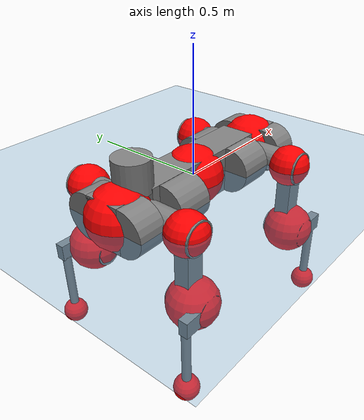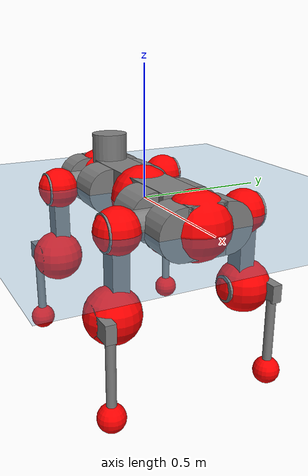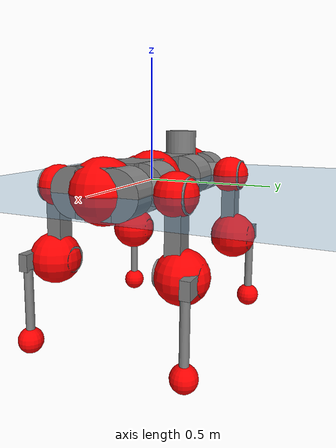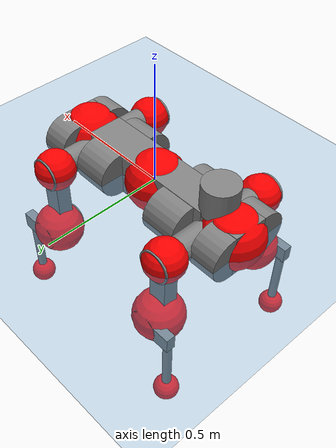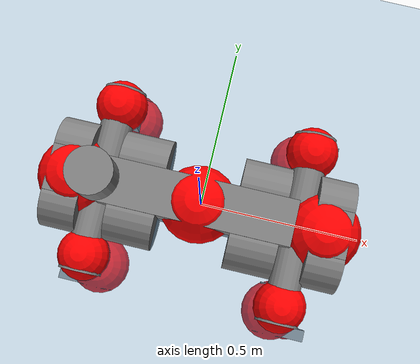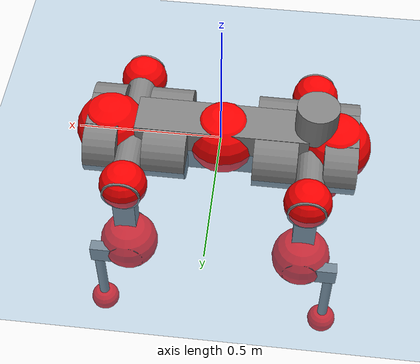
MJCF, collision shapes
<mujoco model="anymal_c">
  <compiler angle="radian" assetdir="assets" balanceinertia="true" inertiafromgeom="false"/>

  <option timestep="0.005" density="1.2" viscosity="2e-05"/>

  <size nkey="1"/>

  <visual>
    <quality shadowsize="8192"/>
    <map shadowclip="0.5"/>
  </visual>

  <default>
    <default class="/">
      <material specular="0" shininess="0.25"/>
      <geom contype="0" conaffinity="0" group="1" solref="-1000 -80"/>
      <site size="0.01 0.005 0.005" group="5"/>
      <general forcelimited="true" forcerange="-80 80" biastype="affine" gainprm="80" biasprm="0 -80 -2"/>
      <default class="anymal_c">
        <joint armature="0.01" damping="0.01" frictionloss="0.1"/>
        <default class="visual">
          <geom type="mesh" group="2"/>
          <default class="visual_zflip"/>
        </default>
        <default class="collision">
          <geom type="cylinder" group="3"/>
          <default class="foot">
            <geom size="0.03 0 0" type="sphere" condim="6" priority="1" friction="0.8 0.02 0.01" solimp="0.015 1 0.03"/>
          </default>
        </default>
      </default>
      <default class="reward_collision_sphere">
        <geom group="5" rgba="1 0 0 1"/>
      </default>
    </default>
  </default>

  <asset>
    <texture type="skybox" colorspace="auto" name="//unnamed_texture_0" builtin="gradient" rgb1="0.95 0.95 0.95" rgb2="0.95 0.95 0.95" width="100" height="600"/>
    <texture type="2d" colorspace="auto" name="texplane" builtin="checker" rgb1="0.345 0.575 0.748" rgb2="0.345 0.575 0.748" markrgb="1 1 1" width="512" height="512"/>
    <texture type="2d" colorspace="linear" name="base" file="base.png"/>
    <texture type="2d" colorspace="linear" name="top_shell" file="top_shell.png"/>
    <texture type="2d" colorspace="linear" name="bottom_shell" file="bottom_shell.png"/>
    <texture type="2d" colorspace="linear" name="remote" file="remote.png"/>
    <texture type="2d" colorspace="linear" name="hatch" file="hatch.png"/>
    <texture type="2d" colorspace="linear" name="handle" file="handle.png"/>
    <texture type="2d" colorspace="linear" name="face" file="face.png"/>
    <texture type="2d" colorspace="linear" name="battery" file="battery.png"/>
    <texture type="2d" colorspace="linear" name="lidar_cage" file="lidar_cage.png"/>
    <texture type="2d" colorspace="linear" name="depth_camera" file="depth_camera.png"/>
    <texture type="2d" colorspace="linear" name="wide_angle_camera" file="wide_angle_camera.png"/>
    <texture type="2d" colorspace="linear" name="lidar" file="lidar.png"/>
    <texture type="2d" colorspace="linear" name="drive" file="drive.png"/>
    <texture type="2d" colorspace="linear" name="hip_l" file="hip_l.png"/>
    <texture type="2d" colorspace="linear" name="shank_l" file="shank_l.png"/>
    <texture type="2d" colorspace="linear" name="foot" file="foot.png"/>
    <texture type="2d" colorspace="linear" name="thigh" file="thigh.png"/>
    <texture type="2d" colorspace="linear" name="shank_r" file="shank_r.png"/>
    <texture type="2d" colorspace="linear" name="hip_r" file="hip_r.png"/>
    <material name="MatPlane" class="/" texture="texplane" texuniform="true" texrepeat="2 2" specular="0.9" shininess="0.5"/>
    <material name="black_plastic" class="/" rgba="0.007 0.007 0.007 1"/>
    <material name="green" class="/" rgba="0.052 0.178 0.033 1"/>
    <material name="red" class="/" rgba="0.178 0.006 0.005 1"/>
    <material name="yellow" class="/" rgba="0.178 0.119 0.006 1"/>
    <material name="lwl" class="/" rgba="0.8 0.8 0.8 1"/>
    <material name="base" class="/" texture="base"/>
    <material name="top_shell" class="/" texture="top_shell"/>
    <material name="bottom_shell" class="/" texture="bottom_shell"/>
    <material name="hip_l" class="/" texture="hip_l"/>
    <material name="thigh" class="/" texture="thigh"/>
    <material name="shank_l" class="/" texture="shank_l"/>
    <material name="foot" class="/" texture="foot"/>
    <material name="hip_r" class="/" texture="hip_r"/>
    <material name="shank" class="/" texture="shank_r"/>
    <material name="hatch" class="/" texture="hatch"/>
    <material name="remote" class="/" texture="remote"/>
    <material name="handle" class="/" texture="handle"/>
    <material name="face" class="/" texture="face"/>
    <material name="depth_camera" class="/" texture="depth_camera"/>
    <material name="wide_angle_camera" class="/" texture="wide_angle_camera"/>
    <material name="battery" class="/" texture="battery"/>
    <material name="lidar_cage" class="/" texture="lidar_cage"/>
    <material name="lidar" class="/" texture="lidar"/>
    <material name="drive" class="/" texture="drive"/>
    <mesh name="base_0" class="/" file="base_0.obj"/>
    <mesh name="base_1" class="/" file="base_1.obj"/>
    <mesh name="base_2" class="/" file="base_2.obj"/>
    <mesh name="base_3" class="/" file="base_3.obj"/>
    <mesh name="base_4" class="/" file="base_4.obj"/>
    <mesh name="base_5" class="/" file="base_5.obj"/>
    <mesh name="top_shell" class="/" file="top_shell.obj"/>
    <mesh name="bottom_shell" class="/" file="bottom_shell.obj"/>
    <mesh name="remote" class="/" file="remote.obj"/>
    <mesh name="handle" class="/" file="handle.obj"/>
    <mesh name="face" class="/" file="face.obj"/>
    <mesh name="wide_angle_camera" class="/" file="wide_angle_camera.obj"/>
    <mesh name="depth_camera" class="/" file="depth_camera.obj"/>
    <mesh name="battery" class="/" file="battery.obj"/>
    <mesh name="lidar_cage" class="/" file="lidar_cage.obj"/>
    <mesh name="lidar" class="/" file="lidar.obj"/>
    <mesh name="drive" class="/" file="drive.obj"/>
    <mesh name="hip_l" class="/" file="hip_l.obj"/>
    <mesh name="thigh" class="/" file="thigh.obj"/>
    <mesh name="shank_l" class="/" file="shank_l.obj"/>
    <mesh name="foot" class="/" file="foot.obj"/>
    <mesh name="hip_r" class="/" file="hip_r.obj"/>
    <mesh name="hatch" class="/" file="hatch.obj"/>
    <mesh name="shank_r" class="/" file="shank_r.obj"/>
  </asset>

  <worldbody>
    <geom name="floor" class="/" size="100 100 0.125" type="plane" group="0" material="MatPlane"/>
    <light name="toplight_shadow" class="/" pos="0 0 5" dir="0.0990148 0.0990148 -0.990148" type="directional" ambient="0.04 0.04 0.04" diffuse="0.55 0.55 0.55" specular="0.12 0.12 0.12"/>
    <light name="toplight_fill" class="/" pos="0 0 5" dir="0.0990148 0.0990148 -0.990148" type="directional" castshadow="false" ambient="0.04 0.04 0.04" diffuse="0.3 0.3 0.3" specular="0.08 0.08 0.08"/>
    <body name="trunk" childclass="anymal_c" pos="-0.00788365 -0.00200938 0.000769807" quat="0.999995 0.000237876 -0.0029974 -0.00121182">
      <inertial pos="0.00935809 -0.000655652 0.0484044" quat="0.49762 0.496915 0.496323 0.509031" mass="23.3576" diaginertia="0.325857 1.54756 0.250366"/>
      <joint name="//unnamed_joint_0" type="free" armature="0" damping="0" frictionloss="0"/>
      <geom name="//unnamed_geom_1" class="visual" material="green" mesh="base_0"/>
      <geom name="//unnamed_geom_2" class="visual" material="yellow" mesh="base_1"/>
      <geom name="//unnamed_geom_3" class="visual" material="red" mesh="base_2"/>
      <geom name="//unnamed_geom_4" class="visual" material="black_plastic" mesh="base_3"/>
      <geom name="//unnamed_geom_5" class="visual" material="lwl" mesh="base_4"/>
      <geom name="//unnamed_geom_6" class="visual" material="base" mesh="base_5"/>
      <geom name="trunk_1" class="collision" size="0.299989 0.0724112 0.0931001" type="box"/>
      <geom name="trunk_2" class="collision" size="0.0931001 0.0749973" pos="0.190328 0.0840018 0" quat="0.707107 0 0.707107 0"/>
      <geom name="trunk_3" class="collision" size="0.0931001 0.0749973" pos="-0.190328 0.0840018 0" quat="0.707107 0 0.707107 0"/>
      <geom name="trunk_4" class="collision" size="0.0931001 0.0749973" pos="0.190328 -0.0840018 0" quat="0.707107 0 0.707107 0"/>
      <geom name="trunk_5" class="collision" size="0.0931001 0.0749973" pos="-0.190328 -0.0840018 0" quat="0.707107 0 0.707107 0"/>
      <geom name="//unnamed_geom_12" class="visual" material="top_shell" mesh="top_shell"/>
      <geom name="//unnamed_geom_13" class="visual" material="bottom_shell" mesh="bottom_shell"/>
      <geom name="//unnamed_geom_14" class="visual" material="remote" mesh="remote"/>
      <geom name="//unnamed_geom_15" class="visual" material="handle" mesh="handle"/>
      <geom name="//unnamed_geom_16" class="visual" pos="0.362717 0 0" quat="1 0 0 0" material="face" mesh="face"/>
      <geom name="trunk_6" class="collision" size="0.0568945 0.0724112 0.0931001" pos="0.410846 0 0" type="box"/>
      <geom name="//unnamed_geom_18" class="collision" size="0.0931001 0.0568945" pos="0.410846 0.0840018 0" quat="0.707107 0 0.707107 0"/>
      <geom name="//unnamed_geom_19" class="collision" size="0.0931001 0.0568945" pos="0.410846 -0.0840018 0" quat="0.707107 0 0.707107 0"/>
      <geom name="//unnamed_geom_20" class="visual" pos="0.403983 0 -0.0311887" quat="0.965926 0 0.258819 0" material="depth_camera" mesh="depth_camera"/>
      <geom name="//unnamed_geom_21" class="visual" pos="0.448911 0 0.0153928" material="wide_angle_camera" mesh="wide_angle_camera"/>
      <geom name="//unnamed_geom_22" class="visual_zflip" pos="-0.362717 0 0" quat="0 0 0 1" material="face" mesh="face"/>
      <geom name="trunk_7" class="collision" size="0.0568945 0.0724112 0.0931001" pos="-0.410846 0 0" quat="0 0 0 1" type="box"/>
      <geom name="//unnamed_geom_24" class="collision" size="0.0931001 0.0568945" pos="-0.410846 -0.0840018 0" quat="0 -0.707107 0 0.707107"/>
      <geom name="//unnamed_geom_25" class="collision" size="0.0931001 0.0568945" pos="-0.410846 0.0840018 0" quat="0 -0.707107 0 0.707107"/>
      <geom name="//unnamed_geom_26" class="visual" pos="-0.403983 0 -0.0311887" quat="0 -0.258819 0 0.965926" material="depth_camera" mesh="depth_camera"/>
      <geom name="//unnamed_geom_27" class="visual_zflip" pos="-0.448911 0 0.0153928" quat="0 0 0 1" material="wide_angle_camera" mesh="wide_angle_camera"/>
      <geom name="//unnamed_geom_28" class="visual" material="battery" mesh="battery"/>
      <geom name="//unnamed_geom_29" class="visual" pos="0 0.0960244 0.0287063" quat="0.683013 -0.183013 0.183013 0.683013" material="depth_camera" mesh="depth_camera"/>
      <geom name="//unnamed_geom_30" class="visual" pos="0 -0.0960244 0.0287063" quat="0.683013 0.183013 0.183013 -0.683013" material="depth_camera" mesh="depth_camera"/>
      <geom name="//unnamed_geom_31" class="visual" pos="-0.318526 0 0.0755757" quat="1 0 0 0" material="lidar_cage" mesh="lidar_cage"/>
      <geom name="trunk_8" class="collision" size="0.0724112 0.0620667" pos="-0.318526 0 0.13727"/>
      <geom name="//unnamed_geom_33" class="visual" pos="-0.318526 0.000127666 0.146216" quat="0.707107 0 0 -0.707107" material="lidar" mesh="lidar"/>
      <geom name="//unnamed_geom_34" class="visual" pos="0.262434 0.124742 2.96331e-09" quat="0.258819 0.965926 0 0" material="drive" mesh="drive"/>
      <geom name="//unnamed_geom_35" class="visual" pos="0.262434 -0.124742 -2.96331e-09" quat="0.258819 -0.965926 0 0" material="drive" mesh="drive"/>
      <geom name="//unnamed_geom_36" class="visual" pos="-0.262434 0.124742 -2.96331e-09" quat="0 0 0.965926 -0.258819" material="drive" mesh="drive"/>
      <geom name="//unnamed_geom_37" class="visual" pos="-0.262434 -0.124742 2.96331e-09" quat="0 0 -0.965926 -0.258819" material="drive" mesh="drive"/>
      <geom name="//unnamed_geom_38" class="visual" pos="0.101508 0 0.0750616" quat="1 0 0 0" material="hatch" mesh="hatch"/>
      <geom name="//unnamed_geom_39" class="reward_collision_sphere" size="0.124133"/>
      <geom name="//unnamed_geom_40" class="reward_collision_sphere" size="0.124133" pos="0.393782 0 0"/>
      <geom name="//unnamed_geom_41" class="reward_collision_sphere" size="0.124133" pos="-0.393782 0 0"/>
      <site name="imu" pos="0.207126 0.00222063 0.0172989" size="0.0103445"/>
      <camera name="track" pos="0 -2.40005 0" quat="0.707107 0.707107 0 0" mode="trackcom"/>
      <camera name="ego_camera" pos="0.393782 0 -0.0411296" quat="-0.5 -0.5 0.5 0.5"/>
      <body name="LF_HIP" pos="0.262865 0.123977 -0.000389295" quat="0.258862 0.965914 0.00021642 -0.00020732">
        <inertial pos="0.0515504 -0.0146473 -0.0107385" quat="-0.121779 0.709303 -0.12671 0.682644" mass="3.17796" diaginertia="0.00276708 0.0123203 0.00377351"/>
        <joint name="LF_HAA" pos="0 0 0" axis="0.999277 0.0320234 -0.020497" range="-0.867824 0.44121" armature="0.010629" damping="0.00410313" frictionloss="0.0997438"/>
        <geom name="//unnamed_geom_42" class="visual" pos="0 0.000174318 -2.86316e-05" quat="0.258819 -0.965926 0 0" material="hip_l" mesh="hip_l"/>
        <geom name="//unnamed_geom_43" class="visual" pos="0.0524167 -0.0677315 -0.0378342" quat="0.183013 -0.683013 0.683013 0.183013" material="drive" mesh="drive"/>
        <geom name="//unnamed_geom_44" class="collision" size="0.0517223 0.0724112" pos="0.0524167 -0.0143521 -0.0071" quat="-0.353553 -0.612372 0.612372 -0.353553"/>
        <body name="LF_THIGH" pos="0.0514565 -0.0871555 -0.0447294" quat="0.182066 -0.683524 0.683378 0.180672">
          <inertial pos="0.0235562 0.00266462 -0.246334" quat="0.993237 -0.00578456 -0.0811282 0.0828584" mass="3.46579" diaginertia="0.0160258 0.0797459 0.00450686"/>
          <joint name="LF_HFE" pos="0 0 0" axis="0.999995 0.00048944 0.00319911" stiffness="0.0400084" range="-3.153 3.15549" armature="0.0104696" damping="0.00989622" frictionloss="0.100487"/>
          <geom name="//unnamed_geom_45" class="visual" pos="-0.00646532 -1.01878e-05 0" quat="0.707107 0 0 -0.707107" material="thigh" mesh="thigh"/>
          <geom name="//unnamed_geom_46" class="collision" size="0.067239 0.0413778" pos="0.0350028 0 0" quat="0.5 0.5 -0.5 -0.5"/>
          <geom name="//unnamed_geom_47" class="collision" size="0.0387917 0.0310334 0.146182" pos="0.0262521 0 -0.145305" quat="0.707107 0 0 -0.707107" type="box"/>
          <geom name="//unnamed_geom_48" class="visual" pos="0.0877696 0 -0.293049" quat="1 0 0 0" material="drive" mesh="drive"/>
          <geom name="//unnamed_geom_49" class="collision" size="0.0517223 0.0724112" pos="0.0265146 0 -0.293049" quat="0.707107 0 0.707107 0"/>
          <geom name="//unnamed_geom_50" class="reward_collision_sphere" size="0.0827556" pos="0.0218768 0 0"/>
          <body name="LF_SHANK" pos="0.0906839 0.00637351 -0.295909" quat="0.999999 0.00115464 -0.000278674 -0.000106758">
            <inertial pos="0.00954353 -0.0732622 -0.0858707" quat="0.992992 -0.115361 -0.00133608 -0.0256433" mass="0.64281" diaginertia="0.00479843 0.0199527 0.00116969"/>
            <joint name="LF_KFE" pos="0 0 0" axis="0.999993 0.00204073 0.00302855" range="-3.01369 3.176" armature="0.00979248" damping="0.0302982" frictionloss="0.0965667"/>
            <geom name="//unnamed_geom_51" class="visual" pos="-0.0021082 -0.011241 0" quat="0.707107 0 0 -0.707107" material="shank_l" mesh="shank_l"/>
            <geom name="LF_kfe_act" class="collision" size="0.0620667 0.0206889" pos="0.0175014 0 0" quat="0.5 0.5 -0.5 -0.5"/>
            <geom name="//unnamed_geom_53" class="collision" size="0.0594796 0.0349125 0.0196545" pos="0.0175014 -0.0690003 0" quat="0.5 0.5 -0.5 -0.5" type="box"/>
            <geom name="//unnamed_geom_54" class="visual" pos="0.0114202 -0.109165 -0.347514" quat="0.382683 0 0 -0.92388" material="foot" mesh="foot"/>
            <geom name="LF_calf" class="collision" size="0.0181028 0.146118" pos="0.0114197 -0.105542 -0.173757" quat="0.707107 0 0 -0.707107"/>
            <geom name="LF_foot" class="foot" size="0.0201169" pos="0.0114197 -0.105542 -0.324379" quat="0.707107 0 0 -0.707107"/>
            <geom name="//unnamed_geom_57" class="reward_collision_sphere" size="0.103445" pos="-0.0437535 0 0"/>
            <geom name="//unnamed_geom_58" class="reward_collision_sphere" size="0.0517223" pos="0.0114197 -0.105542 -0.324379"/>
            <site name="LF_foot" class="foot" pos="0.0114197 -0.105542 -0.324379" quat="0.707107 0 0 -0.707107" size="0.0103445"/>
          </body>
        </body>
      </body>
      <body name="RF_HIP" pos="0.265325 -0.124851 0.00651837" quat="0.256887 -0.966441 0.000387292 0.000447161">
        <inertial pos="0.0484287 0.0240685 -0.00790706" quat="0.142039 0.677082 0.151405 0.706018" mass="3.12576" diaginertia="0.00322081 0.0125381 0.00399312"/>
        <joint name="RF_HAA" pos="0 0 0" axis="0.999972 0.00132171 -0.00732663" range="-0.477914 0.711844" armature="0.0109016" damping="0.0225181" frictionloss="0.130124"/>
        <geom name="//unnamed_geom_59" class="visual" pos="0 -0.000174317 -2.86315e-05" quat="0.258819 0.965926 0 0" material="hip_r" mesh="hip_r"/>
        <geom name="//unnamed_geom_60" class="visual" pos="0.0524167 0.0677315 -0.0378342" quat="0.183013 0.683013 0.683013 -0.183013" material="drive" mesh="drive"/>
        <geom name="//unnamed_geom_61" class="collision" size="0.0517223 0.0724112" pos="0.0524167 0.0143521 -0.0071" quat="-0.353553 0.612372 0.612372 0.353553"/>
        <body name="RF_THIGH" pos="0.0522502 0.0949249 -0.043043" quat="0.183619 0.683396 0.682376 -0.183352">
          <inertial pos="0.0253194 0.0040639 -0.254625" quat="0.992013 -0.0168818 -0.0875443 0.0892241" mass="3.33494" diaginertia="0.0152727 0.0744624 0.0045642"/>
          <joint name="RF_HFE" pos="0 0 0" axis="0.999987 0.00368825 0.00360788" stiffness="0.0105178" range="-3.19035 3.04869" armature="0.0105481" damping="0.00335728" frictionloss="0.101215"/>
          <geom name="//unnamed_geom_62" class="visual" pos="-0.00646532 -1.01878e-05 0" quat="0.707107 0 0 -0.707107" material="thigh" mesh="thigh"/>
          <geom name="//unnamed_geom_63" class="collision" size="0.067239 0.0413778" pos="0.0350028 0 0" quat="0.5 0.5 0.5 0.5"/>
          <geom name="//unnamed_geom_64" class="collision" size="0.0387917 0.0310334 0.146182" pos="0.0262521 0 -0.145305" quat="0.707107 0 0 0.707107" type="box"/>
          <geom name="//unnamed_geom_65" class="visual" pos="0.0877696 0 -0.293049" quat="1 0 0 0" material="drive" mesh="drive"/>
          <geom name="//unnamed_geom_66" class="collision" size="0.0517223 0.0724112" pos="0.0265146 0 -0.293049" quat="0.707107 0 0.707107 0"/>
          <geom name="//unnamed_geom_67" class="reward_collision_sphere" size="0.0827556" pos="0.0218768 0 0"/>
          <body name="RF_SHANK" pos="0.088394 0.00454927 -0.294115" quat="1 1.05959e-05 0.000117872 2.58561e-05">
            <inertial pos="0.00525044 0.0754338 -0.082077" quat="0.98934 0.143245 0.00906936 0.0245767" mass="0.636805" diaginertia="0.00524427 0.0230012 0.00134093"/>
            <joint name="RF_KFE" pos="0 0 0" axis="0.999403 -0.00601584 -0.0340155" stiffness="0.0253641" range="-3.07936 3.07271" armature="0.00991429" damping="0" frictionloss="0.103406"/>
            <geom name="//unnamed_geom_68" class="visual" pos="-0.00210819 0.011241 0" quat="0.707107 0 0 0.707107" material="shank" mesh="shank_r"/>
            <geom name="RF_kfe_act" class="collision" size="0.0620667 0.0206889" pos="0.0175014 0 0" quat="0.5 0.5 0.5 0.5"/>
            <geom name="//unnamed_geom_70" class="collision" size="0.0594796 0.0349125 0.0196545" pos="0.0175014 0.0690003 0" quat="0.5 0.5 0.5 0.5" type="box"/>
            <geom name="//unnamed_geom_71" class="visual" pos="0.0114192 0.109165 -0.347514" quat="0.382683 0 0 0.92388" material="foot" mesh="foot"/>
            <geom name="RF_calf" class="collision" size="0.0181028 0.146118" pos="0.0114197 0.105542 -0.173757" quat="0.707107 0 0 0.707107"/>
            <geom name="RF_foot" class="foot" size="0.0289534" pos="0.0114197 0.105542 -0.324379" quat="0.707107 0 0 0.707107"/>
            <geom name="//unnamed_geom_74" class="reward_collision_sphere" size="0.103445" pos="-0.0437535 0 0"/>
            <geom name="//unnamed_geom_75" class="reward_collision_sphere" size="0.0517223" pos="0.0114197 0.105542 -0.324379"/>
            <site name="RF_foot" class="foot" pos="0.0114197 0.105542 -0.324379" quat="0.707107 0 0 0.707107" size="0.0103445"/>
          </body>
        </body>
      </body>
      <body name="LH_HIP" pos="-0.261518 0.125119 0.00369542" quat="-8.17938e-05 0.000167767 0.965845 -0.259121">
        <inertial pos="0.0499607 0.011353 -0.00481053" quat="0.130118 0.661413 0.163356 0.720359" mass="2.88481" diaginertia="0.0031599 0.0123559 0.00357274"/>
        <joint name="LH_HAA" pos="0 0 0" axis="1 -0.000534076 -3.53886e-05" range="-0.53972 0.762168" armature="0.0125861" damping="0.0019641" frictionloss="0.0732501"/>
        <geom name="//unnamed_geom_76" class="visual" pos="0 -0.000174317 -2.86315e-05" quat="-0.258819 -0.965926 0 0" material="hip_r" mesh="hip_r"/>
        <geom name="//unnamed_geom_77" class="visual" pos="0.0524167 0.0677315 -0.0378342" quat="0.183013 0.683013 0.683013 -0.183013" material="drive" mesh="drive"/>
        <geom name="//unnamed_geom_78" class="collision" size="0.0517223 0.0724112" pos="0.0524167 0.0143521 -0.0071" quat="-0.353553 0.612372 0.612372 0.353553"/>
        <body name="LH_THIGH" pos="0.0516149 0.0926736 -0.0488218" quat="0.182652 0.682378 0.683439 -0.184144">
          <inertial pos="0.0267155 0.000589005 -0.25039" quat="0.992518 -0.00560991 -0.0811264 0.0910766" mass="3.15141" diaginertia="0.0161009 0.0776778 0.00472162"/>
          <joint name="LH_HFE" pos="0 0 0" axis="0.999936 -0.00445464 -0.0104469" range="-3.10711 3.18044" armature="0.00843706" damping="0.0142922" frictionloss="0.104419"/>
          <geom name="//unnamed_geom_79" class="visual" pos="-0.00646532 -1.01878e-05 0" quat="0.707107 0 0 -0.707107" material="thigh" mesh="thigh"/>
          <geom name="//unnamed_geom_80" class="collision" size="0.067239 0.0413778" pos="0.0350028 0 0" quat="0.5 0.5 -0.5 -0.5"/>
          <geom name="//unnamed_geom_81" class="collision" size="0.0387917 0.0310334 0.146182" pos="0.0262521 0 -0.145305" quat="0.707107 0 0 -0.707107" type="box"/>
          <geom name="//unnamed_geom_82" class="visual" pos="0.0877696 0 -0.293049" quat="1 0 0 0" material="drive" mesh="drive"/>
          <geom name="//unnamed_geom_83" class="collision" size="0.0517223 0.0724112" pos="0.0265146 0 -0.293049" quat="0.707107 0 0.707107 0"/>
          <geom name="//unnamed_geom_84" class="reward_collision_sphere" size="0.0827556" pos="0.0218768 0 0"/>
          <body name="LH_SHANK" pos="0.0880442 -0.000784938 -0.286639" quat="1 0.000324672 -0.000610756 0.000327124">
            <inertial pos="0.00421676 0.0660285 -0.0810222" quat="0.992595 0.117489 -0.00553454 0.030331" mass="0.656461" diaginertia="0.00536563 0.023731 0.00142173"/>
            <joint name="LH_KFE" pos="0 0 0" axis="0.999954 0.00962141 9.70824e-05" stiffness="0.0385746" range="-3.13021 3.12989" armature="0.00953117" damping="0.0199329" frictionloss="0.0663082"/>
            <geom name="//unnamed_geom_85" class="visual" pos="-0.00210819 0.011241 0" quat="-0.707107 0 0 -0.707107" material="shank" mesh="shank_r"/>
            <geom name="LH_kfe_act" class="collision" size="0.0620667 0.0206889" pos="0.0175014 0 0" quat="0.5 0.5 -0.5 -0.5"/>
            <geom name="//unnamed_geom_87" class="collision" size="0.0594796 0.0349125 0.0196545" pos="0.0175014 0.0690003 0" quat="0.5 0.5 -0.5 -0.5" type="box"/>
            <geom name="//unnamed_geom_88" class="visual" pos="0.0114192 0.109165 -0.347514" quat="-0.382683 0 0 -0.92388" material="foot" mesh="foot"/>
            <geom name="LH_calf" class="collision" size="0.0181028 0.146118" pos="0.0114197 0.105542 -0.173757" quat="0.707107 0 0 -0.707107"/>
            <geom name="LH_foot" class="foot" size="0.0329502" pos="0.0114197 0.105542 -0.324379" quat="0.707107 0 0 -0.707107"/>
            <geom name="//unnamed_geom_91" class="reward_collision_sphere" size="0.103445" pos="-0.0437535 0 0"/>
            <geom name="//unnamed_geom_92" class="reward_collision_sphere" size="0.0517223" pos="0.0114197 0.105542 -0.324379"/>
            <site name="LH_foot" class="foot" pos="0.0114197 0.105542 -0.324379" quat="0.707107 0 0 -0.707107" size="0.0103445"/>
          </body>
        </body>
      </body>
      <body name="RH_HIP" pos="-0.261848 -0.123199 0.00172162" quat="-0.00221074 -0.00060646 -0.965246 -0.261332">
        <inertial pos="0.0423172 -0.0221336 -0.00139099" quat="-0.123168 0.716022 -0.146937 0.671231" mass="3.04427" diaginertia="0.00295046 0.0119261 0.00364888"/>
        <joint name="RH_HAA" pos="0 0 0" axis="0.999277 0.0302488 0.0230171" range="-0.711103 0.538432" armature="0.0107831" damping="0.0046929" frictionloss="0.114021"/>
        <geom name="//unnamed_geom_93" class="visual" pos="0 0.000174318 -2.86316e-05" quat="-0.258819 0.965926 0 0" material="hip_l" mesh="hip_l"/>
        <geom name="//unnamed_geom_94" class="visual" pos="0.0524167 -0.0677315 -0.0378342" quat="-0.183013 0.683013 -0.683013 -0.183013" material="drive" mesh="drive"/>
        <geom name="//unnamed_geom_95" class="collision" size="0.0517223 0.0724112" pos="0.0524167 -0.0143521 -0.0071" quat="0.353553 0.612372 -0.612372 0.353553"/>
        <body name="RH_THIGH" pos="0.0509436 -0.0839918 -0.0359165" quat="-0.183061 0.683041 -0.682974 -0.183003">
          <inertial pos="0.0250198 -0.000459252 -0.25275" quat="0.99304 -0.00510738 -0.0824175 0.0839832" mass="3.62957" diaginertia="0.0151299 0.0719794 0.00478574"/>
          <joint name="RH_HFE" pos="0 0 0" axis="0.999953 0.00957705 0.00141406" range="-3.1518 3.03447" armature="0.00915346" damping="0.0105155" frictionloss="0.113901"/>
          <geom name="//unnamed_geom_96" class="visual" pos="-0.00646532 -1.01878e-05 0" quat="0.707107 0 0 -0.707107" material="thigh" mesh="thigh"/>
          <geom name="//unnamed_geom_97" class="collision" size="0.067239 0.0413778" pos="0.0350028 0 0" quat="0.5 0.5 0.5 0.5"/>
          <geom name="//unnamed_geom_98" class="collision" size="0.0387917 0.0310334 0.146182" pos="0.0262521 0 -0.145305" quat="0.707107 0 0 0.707107" type="box"/>
          <geom name="//unnamed_geom_99" class="visual" pos="0.0877696 0 -0.293049" quat="1 0 0 0" material="drive" mesh="drive"/>
          <geom name="//unnamed_geom_100" class="collision" size="0.0517223 0.0724112" pos="0.0265146 0 -0.293049" quat="0.707107 0 0.707107 0"/>
          <geom name="//unnamed_geom_101" class="reward_collision_sphere" size="0.0827556" pos="0.0218768 0 0"/>
          <body name="RH_SHANK" pos="0.0872824 0.00366116 -0.29342" quat="1 -0.000215411 -0.000358936 -0.000157701">
            <inertial pos="0.00839853 -0.0709268 -0.0842146" quat="0.993253 -0.112813 -0.00804358 -0.0256261" mass="0.640267" diaginertia="0.00527836 0.023508 0.00122073"/>
            <joint name="RH_KFE" pos="0 0 0" axis="0.99957 0.0280738 0.00844928" range="-3.14107 3.12968" armature="0.00972131" damping="0" frictionloss="0.0961758"/>
            <geom name="//unnamed_geom_102" class="visual" pos="-0.0021082 -0.011241 0" quat="0.707107 0 0 -0.707107" material="shank_l" mesh="shank_l"/>
            <geom name="RH_kfe_act" class="collision" size="0.0620667 0.0206889" pos="0.0175014 0 0" quat="0.5 0.5 0.5 0.5"/>
            <geom name="//unnamed_geom_104" class="collision" size="0.0594796 0.0349125 0.0196545" pos="0.0175014 -0.0690003 0" quat="0.5 0.5 0.5 0.5" type="box"/>
            <geom name="//unnamed_geom_105" class="visual" pos="0.0114202 -0.109165 -0.347514" quat="0.382683 0 0 -0.92388" material="foot" mesh="foot"/>
            <geom name="RH_calf" class="collision" size="0.0181028 0.146118" pos="0.0114197 -0.105542 -0.173757" quat="0.707107 0 0 0.707107"/>
            <geom name="RH_foot" class="foot" size="0.0372832" pos="0.0114197 -0.105542 -0.324379" quat="0.707107 0 0 0.707107"/>
            <geom name="//unnamed_geom_108" class="reward_collision_sphere" size="0.103445" pos="-0.0437535 0 0"/>
            <geom name="//unnamed_geom_109" class="reward_collision_sphere" size="0.0517223" pos="0.0114197 -0.105542 -0.324379"/>
            <site name="RH_foot" class="foot" pos="0.0114197 -0.105542 -0.324379" quat="0.707107 0 0 0.707107" size="0.0103445"/>
          </body>
        </body>
      </body>
    </body>
  </worldbody>

  <contact>
    <pair class="/" geom1="floor" geom2="LF_foot" name="//unnamed_contact_0"/>
    <pair class="/" geom1="floor" geom2="RF_foot" name="//unnamed_contact_1"/>
    <pair class="/" geom1="floor" geom2="LH_foot" name="//unnamed_contact_2"/>
    <pair class="/" geom1="floor" geom2="RH_foot" name="//unnamed_contact_3"/>
  </contact>

  <actuator>
    <general name="LF_HAA" class="/" joint="LF_HAA" forcerange="-82.2832 82.2832" gainprm="79.5113" biasprm="0 -79.5113 -2.30886"/>
    <general name="LF_HFE" class="/" joint="LF_HFE" forcerange="-87.1091 87.1091" gainprm="79.5113" biasprm="0 -79.5113 -2.30886"/>
    <general name="LF_KFE" class="/" joint="LF_KFE" forcerange="-77.0428 77.0428" gainprm="79.5113" biasprm="0 -79.5113 -2.30886"/>
    <general name="RF_HAA" class="/" joint="RF_HAA" forcerange="-81.6277 81.6277" gainprm="79.5113" biasprm="0 -79.5113 -2.30886"/>
    <general name="RF_HFE" class="/" joint="RF_HFE" forcerange="-79.2664 79.2664" gainprm="79.5113" biasprm="0 -79.5113 -2.30886"/>
    <general name="RF_KFE" class="/" joint="RF_KFE" forcerange="-84.5178 84.5178" gainprm="79.5113" biasprm="0 -79.5113 -2.30886"/>
    <general name="LH_HAA" class="/" joint="LH_HAA" forcerange="-61.3611 61.3611" gainprm="79.5113" biasprm="0 -79.5113 -2.30886"/>
    <general name="LH_HFE" class="/" joint="LH_HFE" forcerange="-86.2789 86.2789" gainprm="79.5113" biasprm="0 -79.5113 -2.30886"/>
    <general name="LH_KFE" class="/" joint="LH_KFE" forcerange="-104.164 104.164" gainprm="79.5113" biasprm="0 -79.5113 -2.30886"/>
    <general name="RH_HAA" class="/" joint="RH_HAA" forcerange="-91.9688 91.9688" gainprm="79.5113" biasprm="0 -79.5113 -2.30886"/>
    <general name="RH_HFE" class="/" joint="RH_HFE" forcerange="-62.7371 62.7371" gainprm="79.5113" biasprm="0 -79.5113 -2.30886"/>
    <general name="RH_KFE" class="/" joint="RH_KFE" forcerange="-90.0986 90.0986" gainprm="79.5113" biasprm="0 -79.5113 -2.30886"/>
  </actuator>

  <sensor>
    <gyro site="imu" name="imu_angular_velocity"/>
    <velocimeter site="imu" name="imu_linear_velocity"/>
    <framelinvel objtype="site" objname="LF_foot" name="LF_foot_global_linear_velocity"/>
    <framelinvel objtype="site" objname="RF_foot" name="RF_foot_global_linear_velocity"/>
    <framelinvel objtype="site" objname="LH_foot" name="LH_foot_global_linear_velocity"/>
    <framelinvel objtype="site" objname="RH_foot" name="RH_foot_global_linear_velocity"/>
  </sensor>

  <keyframe>
    <key name="home" qpos="0 0 0.55 1 0 0 0 0 0.4 -0.8 0 -0.4 0.8 0 -0.4 0.8 0 0.4 -0.8"/>
  </keyframe>
</mujoco>
